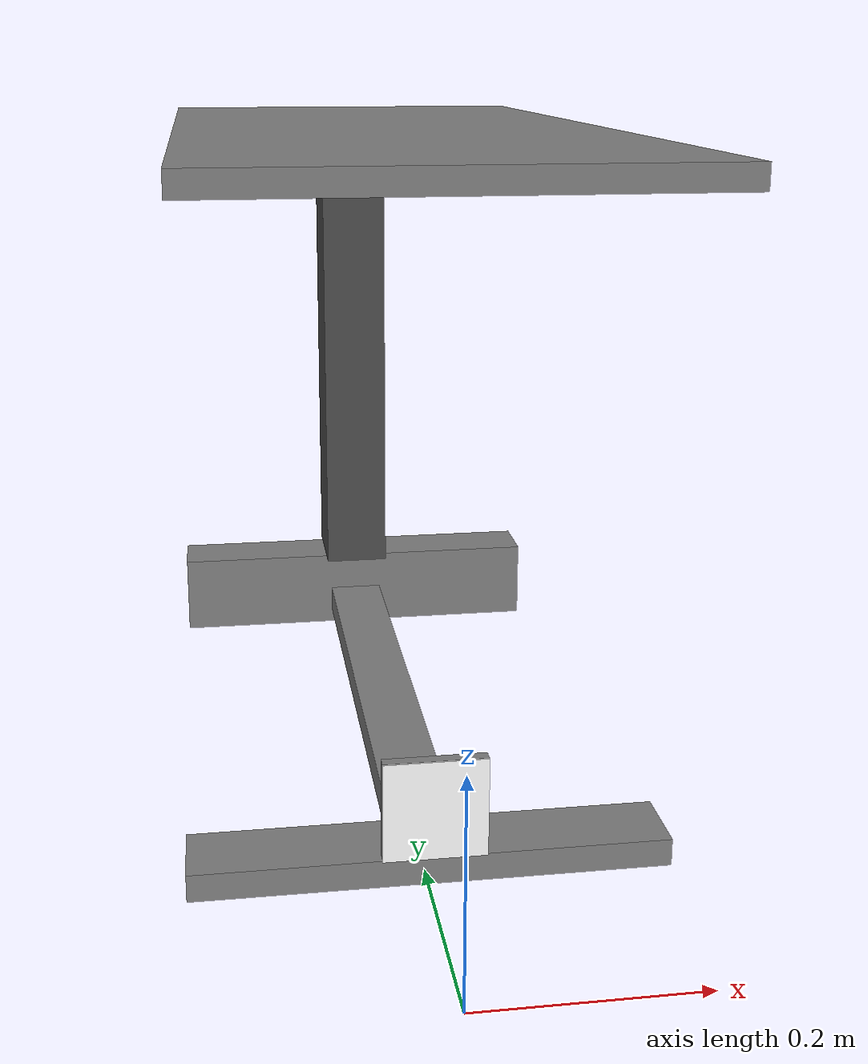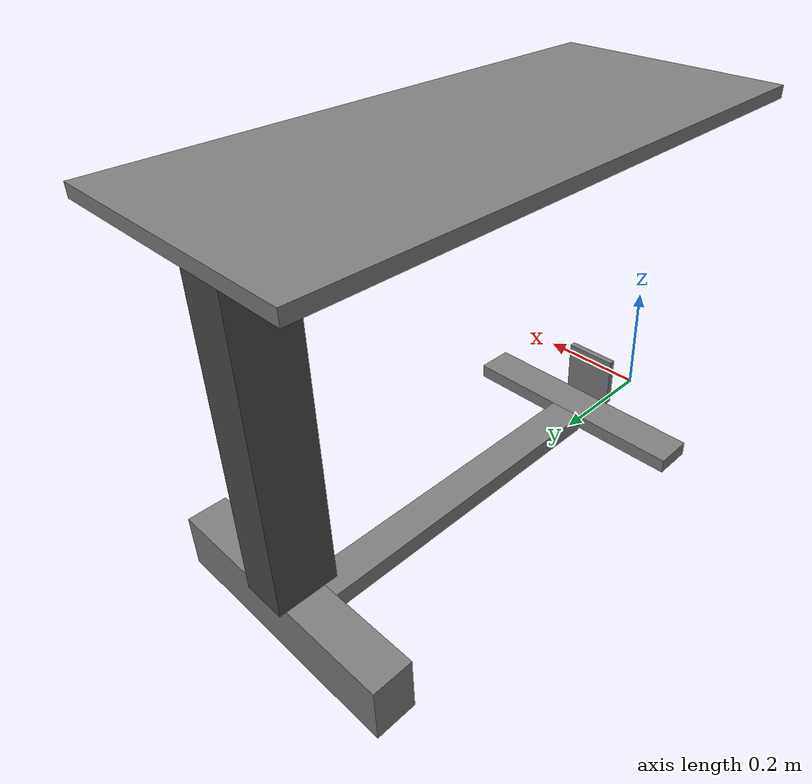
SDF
<?xml version="1.0" ?>
<sdf version="1.4">
    <model name='bed_table'>
      <link name='link'>
        <inertial>
          <pose>0 0.449 0.001 0 0 0</pose>
          <mass>10.0</mass>
          <inertia>
            <ixx>1</ixx>
            <ixy>0</ixy>
            <ixz>0</ixz>
            <iyy>1</iyy>
            <iyz>0</iyz>
            <izz>1</izz>
          </inertia>
        </inertial>
        <visual name='top_board'>
          <pose>0 0.449 0.625 0 0 0</pose>
          <geometry>
            <box>
              <size>0.398 0.898 0.02</size>
            </box>
          </geometry>
          <material>
            <!-- base_materials/wood -->
            <name>wood</name>
            <ambient>1 1 1 1</ambient>
            <diffuse>0.5 0.5 0.5 1.0</diffuse>
            <specular>0 0 0 1.0</specular>
            <shininess>12.5</shininess>
            <pbr>
              <metal>
                <albedo_map>model://base_materials/wood/textures/light_wood.png</albedo_map>
                <max_anisotropy>16</max_anisotropy>
                <metalness>0</metalness>
              </metal>
            </pbr>
          </material>
        </visual>
        <collision name='collision_top_board'>
          <pose>0 0.449 0.625 0 0 0</pose>
          <geometry>
            <box>
              <size>0.398 0.898 0.02</size>
            </box>
          </geometry>
          <max_contacts>10</max_contacts>
          <surface>
            <bounce/>
            <friction>
              <ode/>
            </friction>
            <contact>
              <ode/>
            </contact>
          </surface>
        </collision>
        <visual name='right_pole'>
          <pose>0 0.817 0.3515 0 0 0</pose>
          <geometry>
            <box>
              <size>0.072 0.094 0.527</size>
            </box>
          </geometry>
          <material>
            <!-- hsr_color/grey -->
            <name>grey</name>
            <ambient>0.7 0.7 0.7 1</ambient>
            <diffuse>0.3 0.3 0.3 1</diffuse>
            <specular>0 0 0 1</specular>
            <emissive>0 0 0 1</emissive>
            <shading>gouraud</shading>
            <receive_shadows>on</receive_shadows>
          </material>
        </visual>
        <collision name='collision_right_pole'>
          <pose>0 0.817 0.3515 0 0 0</pose>
          <geometry>
            <box>
              <size>0.072 0.094 0.527</size>
            </box>
          </geometry>
          <max_contacts>10</max_contacts>
          <surface>
            <bounce/>
            <friction>
              <ode/>
            </friction>
            <contact>
              <ode/>
            </contact>
          </surface>
        </collision>
        <visual name='right_bottom_pole'>
          <pose>0 0.8225 0.044 0 0 0</pose>
          <geometry>
            <box>
              <size>0.42 0.063 0.088</size>
            </box>
          </geometry>
          <material>
            <!-- base_materials/wood -->
            <name>wood</name>
            <ambient>1 1 1 1</ambient>
            <diffuse>0.5 0.5 0.5 1.0</diffuse>
            <specular>0 0 0 1.0</specular>
            <shininess>12.5</shininess>
            <pbr>
              <metal>
                <albedo_map>model://base_materials/wood/textures/light_wood.png</albedo_map>
                <max_anisotropy>16</max_anisotropy>
                <metalness>0</metalness>
              </metal>
            </pbr>
          </material>
        </visual>
        <collision name='collision_right_bottom_pole'>
          <pose>0 0.8225 0.044 0 0 0</pose>
          <geometry>
            <box>
              <size>0.42 0.063 0.088</size>
            </box>
          </geometry>
          <max_contacts>10</max_contacts>
          <surface>
            <bounce/>
            <friction>
              <ode/>
            </friction>
            <contact>
              <ode/>
            </contact>
          </surface>
        </collision>
        <visual name='bottom_center_pole'>
          <pose>0 0.502 0.03 0 0 0</pose>
          <geometry>
            <box>
              <size>0.06 0.578 0.03</size>
            </box>
          </geometry>
          <material>
            <!-- base_materials/wood -->
            <name>wood</name>
            <ambient>1 1 1 1</ambient>
            <diffuse>0.5 0.5 0.5 1.0</diffuse>
            <specular>0 0 0 1.0</specular>
            <shininess>12.5</shininess>
            <pbr>
              <metal>
                <albedo_map>model://base_materials/wood/textures/light_wood.png</albedo_map>
                <max_anisotropy>16</max_anisotropy>
                <metalness>0</metalness>
              </metal>
            </pbr>
          </material>
        </visual>
        <collision name='collision_bottom_center_pole'>
          <pose>0 0.502 0.03 0 0 0</pose>
          <geometry>
            <box>
              <size>0.06 0.578 0.03</size>
            </box>
          </geometry>
          <max_contacts>10</max_contacts>
          <surface>
            <bounce/>
            <friction>
              <ode/>
            </friction>
            <contact>
              <ode/>
            </contact>
          </surface>
        </collision>
        <visual name='left_bottom_pole'>
          <pose>0 0.18 0.0325 0 0 0</pose>
          <geometry>
            <box>
              <size>0.418 0.066 0.025</size>
            </box>
          </geometry>
          <material>
            <!-- base_materials/wood -->
            <name>wood</name>
            <ambient>1 1 1 1</ambient>
            <diffuse>0.5 0.5 0.5 1.0</diffuse>
            <specular>0 0 0 1.0</specular>
            <shininess>12.5</shininess>
            <pbr>
              <metal>
                <albedo_map>model://base_materials/wood/textures/light_wood.png</albedo_map>
                <max_anisotropy>16</max_anisotropy>
                <metalness>0</metalness>
              </metal>
            </pbr>
          </material>
        </visual>
        <collision name='collision_left_bottom_pole'>
          <pose>0 0.18 0.0325 0 0 0</pose>
          <geometry>
            <box>
              <size>0.418 0.066 0.025</size>
            </box>
          </geometry>
          <max_contacts>10</max_contacts>
          <surface>
            <bounce/>
            <friction>
              <ode/>
            </friction>
            <contact>
              <ode/>
            </contact>
          </surface>
        </collision>
        <visual name='marker_0010'>
          <pose>0 0.14 0.093 0 0 0</pose>
          <geometry>
            <box>
              <size>0.09 0.001 0.09</size>
            </box>
          </geometry>
          <material>
            <name>Marker/0010</name>

            <ambient>1 1 1 1</ambient>  <!-- 周囲光 (真っ白) -->
            <diffuse>1 1 1 1</diffuse>  <!-- 反射光 (真っ白) -->
            <specular>0 0 0 1</specular>  <!-- 鏡面反射 (無し) -->
            <emissive>0 0 0 0</emissive>  <!-- 発光 (無し) -->

            <pbr>
              <metal>
                <albedo_map>model://bed_table/marker/0010/textures/BchThin_Id0010_Size0060.png</albedo_map>
                <max_anisotropy>16</max_anisotropy>
                <metalness>0.0</metalness> <!-- 金属感を排除 -->
              </metal>
            </pbr>
          </material>
        </visual>
        <collision name='collision_marker_0010'>
          <pose>0 0.14 0.093 0 0 0</pose>
          <geometry>
            <box>
              <size>0.09 0.001 0.09</size>
            </box>
          </geometry>
          <max_contacts>10</max_contacts>
          <surface>
            <bounce/>
            <friction>
              <ode/>
            </friction>
            <contact>
              <ode/>
            </contact>
          </surface>
        </collision>
        <visual name='marker_0010_back_plate'>
          <pose>0 0.146 0.093 0 0 0</pose>
          <geometry>
            <box>
              <size>0.09 0.01 0.09</size>
            </box>
          </geometry>
          <material>
            <!-- base_materials/wood -->
            <name>wood</name>
            <ambient>1 1 1 1</ambient>
            <diffuse>0.5 0.5 0.5 1.0</diffuse>
            <specular>0 0 0 1.0</specular>
            <shininess>12.5</shininess>
            <pbr>
              <metal>
                <albedo_map>model://base_materials/wood/textures/light_wood.png</albedo_map>
                <max_anisotropy>16</max_anisotropy>
                <metalness>0</metalness>
              </metal>
            </pbr>
          </material>
        </visual>
        <collision name='collision_marker_0010_back_plate'>
          <pose>0 0.146 0.093 0 0 0</pose>
          <geometry>
            <box>
              <size>0.09 0.01 0.09</size>
            </box>
          </geometry>
          <max_contacts>10</max_contacts>
          <surface>
            <bounce/>
            <friction>
              <ode/>
            </friction>
            <contact>
              <ode/>
            </contact>
          </surface>
        </collision>
        <velocity_decay>
          <linear>0</linear>
          <angular>0</angular>
        </velocity_decay>
        <self_collide>0</self_collide>
        <kinematic>0</kinematic>
        <gravity>1</gravity>
      </link>
      <static>1</static>
    </model>
</sdf>
